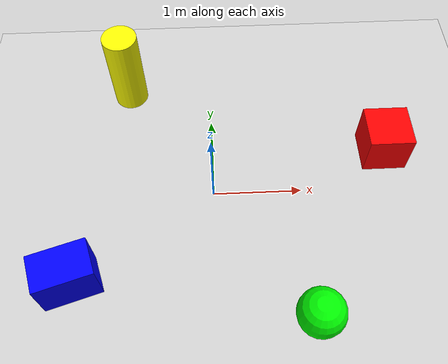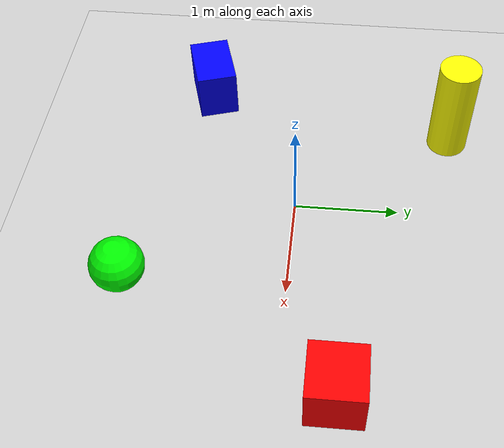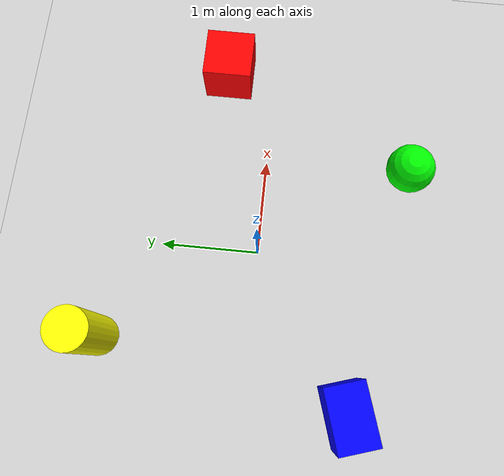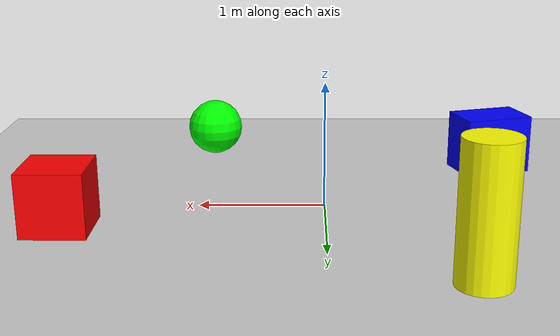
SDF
<?xml version="1.0" ?>
<sdf version="1.6">
  <world name="obstacles">
    <!-- A global light source -->
    <include>
      <uri>model://sun</uri>
    </include>

    <!-- A ground plane -->
    <include>
      <uri>model://ground_plane</uri>
    </include>

    <physics type="ode">
      <real_time_update_rate>1000.0</real_time_update_rate>
      <max_step_size>0.001</max_step_size>
      <real_time_factor>1</real_time_factor>
      <ode>
        <solver>
          <type>quick</type>
          <iters>150</iters>
          <precon_iters>0</precon_iters>
          <sor>1.400000</sor>
          <use_dynamic_moi_rescaling>1</use_dynamic_moi_rescaling>
        </solver>
        <constraints>
          <cfm>0.00001</cfm>
          <erp>0.2</erp>
          <contact_max_correcting_vel>2000.000000</contact_max_correcting_vel>
          <contact_surface_layer>0.01000</contact_surface_layer>
        </constraints>
      </ode>
    </physics>

    <!-- Add some basic environment features -->
    <scene>
      <shadows>false</shadows>
      <ambient>0.4 0.4 0.4 1.0</ambient>
      <background>0.7 0.7 0.7 1.0</background>
    </scene>

    <!-- Static Box Obstacle 1 -->
    <model name="box1">
      <static>true</static>
      <pose>2.0 0.5 0.25 0 0 0</pose>
      <link name="link">
        <collision name="collision">
          <geometry>
            <box>
              <size>0.5 0.5 0.5</size>
            </box>
          </geometry>
        </collision>
        <visual name="visual">
          <geometry>
            <box>
              <size>0.5 0.5 0.5</size>
            </box>
          </geometry>
          <material>
            <ambient>1.0 0 0 1.0</ambient>
            <diffuse>1.0 0 0 1.0</diffuse>
          </material>
        </visual>
      </link>
    </model>

    <!-- Static Box Obstacle 2 -->
    <model name="box2">
      <static>true</static>
      <pose>-1.5 -1.0 0.25 0 0 0.3</pose>
      <link name="link">
        <collision name="collision">
          <geometry>
            <box>
              <size>0.6 0.4 0.5</size>
            </box>
          </geometry>
        </collision>
        <visual name="visual">
          <geometry>
            <box>
              <size>0.6 0.4 0.5</size>
            </box>
          </geometry>
          <material>
            <ambient>0 0 1.0 1.0</ambient>
            <diffuse>0 0 1.0 1.0</diffuse>
          </material>
        </visual>
      </link>
    </model>

    <!-- Static Sphere Obstacle -->
    <model name="sphere1">
      <static>true</static>
      <pose>1.0 -1.5 0.25 0 0 0</pose>
      <link name="link">
        <collision name="collision">
          <geometry>
            <sphere>
              <radius>0.25</radius>
            </sphere>
          </geometry>
        </collision>
        <visual name="visual">
          <geometry>
            <sphere>
              <radius>0.25</radius>
            </sphere>
          </geometry>
          <material>
            <ambient>0 1.0 0 1.0</ambient>
            <diffuse>0 1.0 0 1.0</diffuse>
          </material>
        </visual>
      </link>
    </model>

    <!-- Static Cylinder Obstacle -->
    <model name="cylinder1">
      <static>true</static>
      <pose>-1.0 1.5 0.5 0 0 0</pose>
      <link name="link">
        <collision name="collision">
          <geometry>
            <cylinder>
              <radius>0.2</radius>
              <length>1.0</length>
            </cylinder>
          </geometry>
        </collision>
        <visual name="visual">
          <geometry>
            <cylinder>
              <radius>0.2</radius>
              <length>1.0</length>
            </cylinder>
          </geometry>
          <material>
            <ambient>1.0 1.0 0 1.0</ambient>
            <diffuse>1.0 1.0 0 1.0</diffuse>
          </material>
        </visual>
      </link>
    </model>
  </world>
</sdf>
